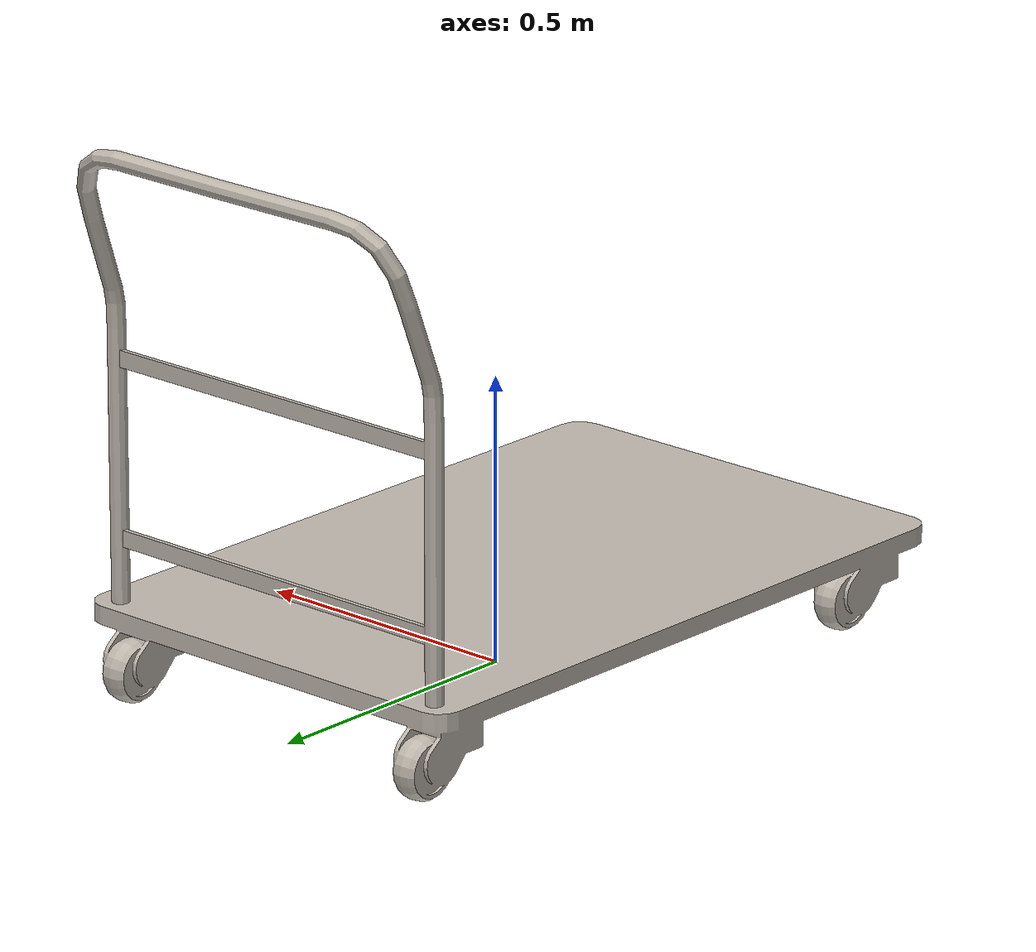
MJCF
<mujoco model="material_cart_platform">
  <compiler angle="radian" autolimits="true"/>
  <option gravity="0 0 -9.81"/>
  <default>
    <default class="wheel">
      <joint type="hinge" axis="1 0 0" damping="0.02" frictionloss="0.01" armature="0.002"/>
      <geom type="cylinder" size="0.05 0.02" quat="0.707107 0 0.707107 0" density="400" group="3" rgba="0 0 0 0" condim="3" friction="1.2 0.005 0.001" solref="0.02 1" solimp="0.9 0.95 0.001"/>
    </default>
  </default>
  <asset>
    <texture name="texture_0" type="2d" file="assets/platform/textures/texture_0.png"/>
    <material name="material_0_lambert1" rgba="1 1 1 1" metallic="1" roughness="1" texture="texture_0"/>
    <mesh name="visual_0" file="assets/platform/meshes/visual_0.obj" inertia="shell"/>
    <texture name="texture_1" type="2d" file="assets/platform/textures/texture_1.png"/>
    <material name="material_1_lambert2" rgba="1 1 1 1" metallic="1" roughness="1" texture="texture_1"/>
    <mesh name="visual_1" file="assets/platform/meshes/visual_1.obj" inertia="shell"/>
  </asset>
  <worldbody>
    <body name="material_cart_platform">
      <joint name="material_cart_platform_free" type="free" damping="0.05"/>
      <geom name="visual_0" type="mesh" mesh="visual_0" material="material_0_lambert1" group="0" contype="0" conaffinity="0" density="0"/>
      <geom name="visual_1" type="mesh" mesh="visual_1" material="material_1_lambert2" group="0" contype="0" conaffinity="0" density="0"/>
      <!-- Deck sits above the casters so only the wheels touch the floor. -->
      <geom name="deck" type="box" pos="0 -0.0331217 0.126" size="0.3957125 0.6168783 0.041" group="3" rgba="0 0 0 0" density="180"/>
      <geom name="handle" type="box" pos="0.000007 0.5817407 0.5737704" size="0.3625134 0.0682593 0.4091333" group="3" rgba="0 0 0 0" density="80"/>
      <body name="caster_fl" pos="-0.323 -0.505 0.05">
        <joint name="caster_fl" class="wheel"/>
        <geom name="caster_fl" class="wheel"/>
      </body>
      <body name="caster_fr" pos="0.321 -0.505 0.05">
        <joint name="caster_fr" class="wheel"/>
        <geom name="caster_fr" class="wheel"/>
      </body>
      <body name="caster_bl" pos="-0.323 0.529 0.05">
        <joint name="caster_bl" class="wheel"/>
        <geom name="caster_bl" class="wheel"/>
      </body>
      <body name="caster_br" pos="0.321 0.529 0.05">
        <joint name="caster_br" class="wheel"/>
        <geom name="caster_br" class="wheel"/>
      </body>
    </body>
  </worldbody>
  <contact>
    <exclude body1="material_cart_platform" body2="caster_fl"/>
    <exclude body1="material_cart_platform" body2="caster_fr"/>
    <exclude body1="material_cart_platform" body2="caster_bl"/>
    <exclude body1="material_cart_platform" body2="caster_br"/>
  </contact>
</mujoco>
